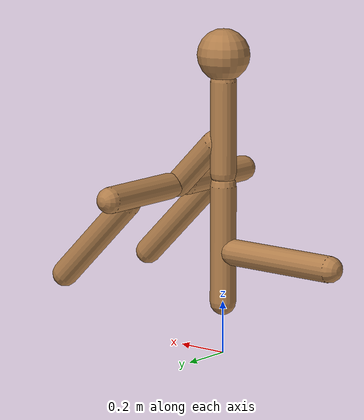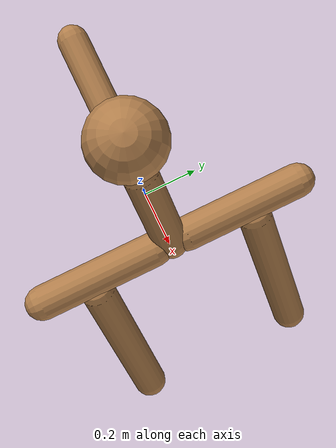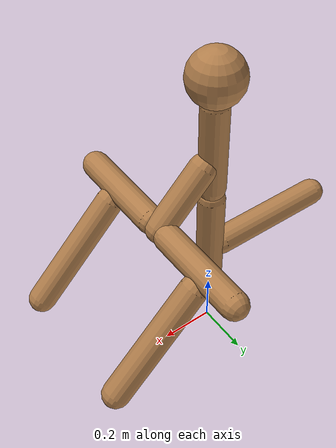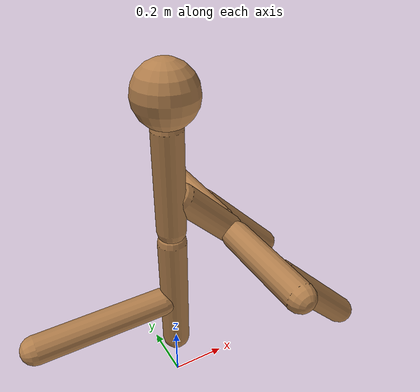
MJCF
<?xml version='1.0' encoding='UTF-8'?>
<!-- Universal Animal Template: unimal -->
<mujoco model="unimal">
  <compiler angle="degree"/>
  <size njmax="2000" nconmax="500"/>
  <option timestep=".005">
    <flag filterparent="disable"/>
  </option>
  <!-- Common defaults to make search space tractable -->
  <default>
    <!-- Define motor defaults -->
    <motor ctrlrange="-1 1" ctrllimited="true"/>
    <!-- Define joint defaults -->
    <default class="normal_joint">
      <joint type="hinge" damping="1" stiffness="1" armature="1" limited="true" range="-120 120" solimplimit="0 0.99 0.01"/>
    </default>
    <default class="walker_joint">
      <joint type="hinge" damping="0.2" stiffness="1" armature=".01" limited="true" range="-120 120" solimplimit="0 0.99 0.01"/>
    </default>
    <default class="stiff_joint">
      <joint type="hinge" damping="5" stiffness="10" armature=".01" limited="true" solimplimit="0 0.99 0.01"/>
    </default>
    <default class="free">
      <joint limited="false" damping="0" armature="0" stiffness="0"/>
    </default>
    <default class="growth_site">
      <site size="1e-6 1e-6 1e-6"/>
    </default>
    <default class="torso_growth_site">
      <site size="1e-6 1e-6 1e-6"/>
    </default>
    <default class="mirror_growth_site">
      <site size="1e-6 1e-6 1e-6"/>
    </default>
    <default class="btm_pos_site">
      <site size="1e-6 1e-6 1e-6"/>
    </default>
    <default class="box_face_site">
      <site size="1e-6 1e-6 1e-6"/>
    </default>
    <default class="imu_vel">
      <site type="box" size="0.05" rgba="1 0 0 0"/>
    </default>
    <default class="touch_site">
      <site group="3" rgba="0 0 1 .3"/>
    </default>
    <default class="food_site">
      <site material="food" size="0.15"/>
    </default>
    <!-- Define geom defaults -->
    <geom type="capsule" condim="3" friction="0.7 0.1 0.1" material="self"/>
  </default>
  <worldbody>
    <light diffuse="1 1 1" directional="true" exponent="1" pos="0 0 8" specular="0.1 0.1 0.1" dir="0 0 -1"/>
    <!-- Programatically generated xml goes here -->
    <body name="torso/0" pos="0 0 1.15">
      <joint name="root" type="free" class="free"/>
      <site name="root" class="imu_vel"/>
      <geom name="torso/0" type="sphere" size="0.1" condim="3" density="700"/>
      <camera name="side" pos="0 -7 2" xyaxes="1 0 0 0 1 2" mode="trackcom"/>
      <site name="torso/0" class="growth_site" pos="0 0 0"/>
      <site name="torso/btm_pos/0" class="btm_pos_site" pos="0 0 -0.1"/>
      <site name="torso/touch/0" class="touch_site" size="0.11"/>
      <site name="torso/horizontal_y/0" class="torso_growth_site" pos="-0.1 0 0"/>
      <body name="limb/0" pos="0.0 0.0 -0.1">
        <joint name="limbx/0" type="hinge" class="normal_joint" range="-90 0" pos="0.0 0.0 0.05" axis="1.0 0.0 0.0"/>
        <joint name="limby/0" type="hinge" class="normal_joint" range="-60 0" pos="0.0 0.0 0.05" axis="0.0 1.0 0.0"/>
        <geom name="limb/0" type="capsule" fromto="0.0 0.0 0.0 0.0 0.0 -0.35" size="0.05" density="800"/>
        <site name="limb/mid/0" class="growth_site" pos="0.0 0.0 -0.2"/>
        <site name="limb/btm/0" class="growth_site" pos="0.0 0.0 -0.35"/>
        <site name="limb/btm_pos/0" class="btm_pos_site" pos="0.0 0.0 -0.35"/>
        <site name="limb/touch/0" class="touch_site" size="0.060000000000000005" fromto="0.0 0.0 0.0 0.0 0.0 -0.35" type="capsule"/>
        <body name="limb/36" pos="0.0 0.0 -0.4">
          <joint name="limbx/36" type="hinge" class="normal_joint" range="-60 60" pos="0.0 0.0 0.05" axis="1.0 0.0 0.0"/>
          <joint name="limby/36" type="hinge" class="normal_joint" range="-30 60" pos="0.0 0.0 0.05" axis="0.0 1.0 0.0"/>
          <geom name="limb/36" type="capsule" fromto="0.0 0.0 0.0 0.0 0.0 -0.45" size="0.05" density="800"/>
          <site name="limb/mid/36" class="growth_site" pos="0.0 0.0 -0.25"/>
          <site name="limb/btm/36" class="growth_site" pos="0.0 0.0 -0.45"/>
          <site name="limb/btm_pos/36" class="btm_pos_site" pos="0.0 0.0 -0.45"/>
          <site name="limb/touch/36" class="touch_site" size="0.060000000000000005" fromto="0.0 0.0 0.0 0.0 0.0 -0.45" type="capsule"/>
          <body name="limb/43" pos="-0.05 0.0 -0.25">
            <joint name="limbx/43" type="hinge" class="normal_joint" range="-45 0" pos="0.05 0.0 0.0" axis="0.0 0.0 -1.0"/>
            <joint name="limby/43" type="hinge" class="normal_joint" range="-60 0" pos="0.05 0.0 0.0" axis="0.0 1.0 0.0"/>
            <geom name="limb/43" type="capsule" fromto="0.0 0.0 0.0 -0.45 0.0 0.0" size="0.05" density="800"/>
            <site name="limb/mid/43" class="growth_site" pos="-0.25 0.0 0.0"/>
            <site name="limb/btm/43" class="growth_site" pos="-0.45 0.0 0.0"/>
            <site name="limb/btm_pos/43" class="btm_pos_site" pos="-0.45 0.0 0.0"/>
            <site name="limb/touch/43" class="touch_site" size="0.060000000000000005" fromto="0.0 0.0 0.0 -0.45 0.0 0.0" type="capsule"/>
          </body>
        </body>
        <body name="limb/48" pos="0.04 0.0 -0.24000000000000002">
          <joint name="limbx/48" type="hinge" class="normal_joint" range="0 90" pos="-0.04 0.0 0.04" axis="0.7071 0.0 0.7071"/>
          <joint name="limby/48" type="hinge" class="normal_joint" range="-60 0" pos="-0.04 0.0 0.04" axis="-0.0 1.0 0.0"/>
          <geom name="limb/48" type="capsule" fromto="0.0 0.0 0.0 0.18 0.0 -0.18" size="0.05" density="800"/>
          <site name="limb/mid/48" class="growth_site" pos="0.11 0.0 -0.11"/>
          <site name="limb/btm/48" class="growth_site" pos="0.18 0.0 -0.18"/>
          <site name="limb/btm_pos/48" class="btm_pos_site" pos="0.21 0.0 -0.21"/>
          <site name="limb/touch/48" class="touch_site" size="0.060000000000000005" fromto="0.0 0.0 0.0 0.18 0.0 -0.18" type="capsule"/>
          <body name="limb/49" pos="0.18 0.05 -0.18">
            <joint name="limbx/49" type="hinge" class="normal_joint" range="-30 60" pos="0.0 -0.05 0.0" axis="1.0 0.0 0.0"/>
            <geom name="limb/49" type="capsule" fromto="0.0 0.0 0.0 0.0 0.35 0.0" size="0.05" density="800"/>
            <site name="limb/mid/49" class="mirror_growth_site" pos="0.0 0.2 0.0"/>
            <site name="limb/btm/49" class="mirror_growth_site" pos="0.0 0.35 0.0"/>
            <site name="limb/btm_pos/49" class="btm_pos_site" pos="0.0 0.4 0.0"/>
            <site name="limb/touch/49" class="touch_site" size="0.060000000000000005" fromto="0.0 0.0 0.0 0.0 0.35 0.0" type="capsule"/>
            <body name="limb/51" pos="0.04 0.2 -0.04">
              <joint name="limby/51" type="hinge" class="normal_joint" range="-30 30" pos="-0.04 0.0 0.04" axis="-0.0 1.0 0.0"/>
              <geom name="limb/51" type="capsule" fromto="0.0 0.0 0.0 0.32 0.0 -0.32" size="0.05" density="800"/>
              <site name="limb/mid/51" class="mirror_growth_site" pos="0.18 0.0 -0.18"/>
              <site name="limb/btm/51" class="mirror_growth_site" pos="0.32 0.0 -0.32"/>
              <site name="limb/btm_pos/51" class="btm_pos_site" pos="0.35 0.0 -0.35"/>
              <site name="limb/touch/51" class="touch_site" size="0.060000000000000005" fromto="0.0 0.0 0.0 0.32 0.0 -0.32" type="capsule"/>
            </body>
          </body>
          <body name="limb/50" pos="0.18 -0.05 -0.18">
            <joint name="limbx/50" type="hinge" class="normal_joint" range="-30 60" pos="0.0 0.05 0.0" axis="1.0 0.0 -0.0"/>
            <geom name="limb/50" type="capsule" fromto="0.0 0.0 0.0 0.0 -0.35 0.0" size="0.05" density="800"/>
            <site name="limb/mid/50" class="mirror_growth_site" pos="0.0 -0.2 0.0"/>
            <site name="limb/btm/50" class="mirror_growth_site" pos="0.0 -0.35 0.0"/>
            <site name="limb/btm_pos/50" class="btm_pos_site" pos="0.0 -0.4 0.0"/>
            <site name="limb/touch/50" class="touch_site" size="0.060000000000000005" fromto="0.0 0.0 0.0 0.0 -0.35 0.0" type="capsule"/>
            <body name="limb/52" pos="0.04 -0.2 -0.04">
              <joint name="limby/52" type="hinge" class="normal_joint" range="-30 30" pos="-0.04 0.0 0.04" axis="-0.0 1.0 0.0"/>
              <geom name="limb/52" type="capsule" fromto="0.0 0.0 0.0 0.32 0.0 -0.32" size="0.05" density="800"/>
              <site name="limb/mid/52" class="mirror_growth_site" pos="0.18 0.0 -0.18"/>
              <site name="limb/btm/52" class="mirror_growth_site" pos="0.32 0.0 -0.32"/>
              <site name="limb/btm_pos/52" class="btm_pos_site" pos="0.35 0.0 -0.35"/>
              <site name="limb/touch/52" class="touch_site" size="0.060000000000000005" fromto="0.0 0.0 0.0 0.32 0.0 -0.32" type="capsule"/>
            </body>
          </body>
        </body>
      </body>
    </body>
  </worldbody>
  <actuator>
    <motor joint="limbx/0" gear="250" name="limbx/0"/>
    <motor joint="limby/0" gear="150" name="limby/0"/>
    <motor joint="limbx/36" gear="150" name="limbx/36"/>
    <motor joint="limby/36" gear="250" name="limby/36"/>
    <motor joint="limbx/43" gear="250" name="limbx/43"/>
    <motor joint="limby/43" gear="150" name="limby/43"/>
    <motor joint="limbx/48" gear="250" name="limbx/48"/>
    <motor joint="limby/48" gear="150" name="limby/48"/>
    <motor joint="limbx/49" gear="200" name="limbx/49"/>
    <motor joint="limby/51" gear="150" name="limby/51"/>
    <motor joint="limbx/50" gear="200" name="limbx/50"/>
    <motor joint="limby/52" gear="150" name="limby/52"/>
  </actuator>
  <sensor>
    <accelerometer name="torso_accel" site="root"/>
    <gyro name="torso_gyro" site="root"/>
    <velocimeter name="torso_vel" site="root"/>
    <subtreeangmom name="unimal_am" body="torso/0"/>
    <touch name="torso/0" site="torso/touch/0"/>
    <touch name="limb/0" site="limb/touch/0"/>
    <touch name="limb/36" site="limb/touch/36"/>
    <touch name="limb/43" site="limb/touch/43"/>
    <touch name="limb/48" site="limb/touch/48"/>
    <touch name="limb/49" site="limb/touch/49"/>
    <touch name="limb/51" site="limb/touch/51"/>
    <touch name="limb/50" site="limb/touch/50"/>
    <touch name="limb/52" site="limb/touch/52"/>
  </sensor>
  <!-- Add hfield assets -->
  <asset/>
  <!-- List of contacts to exclude -->
  <contact>
    <exclude name="limb/49:limb/50" body1="limb/49" body2="limb/50"/>
  </contact>
  <!-- Define material, texture etc -->
  <asset>
    <material name="grid" texture="grid" texrepeat="1 1" texuniform="true" reflectance="0.1"/>
    <material name="hfield" texture="hfield" texrepeat="1 1" texuniform="true" reflectance="0.1"/>
    <material name="wall" texture="wall" texrepeat="1 1" texuniform="true" reflectance=".5"/>
    <material name="platform" texture="platform" texrepeat="1 1" texuniform="true" reflectance=".5"/>
    <material name="boundary" texture="boundary" texrepeat="1 1" texuniform="true" reflectance=".5"/>
    <material name="jump" texture="jump" texrepeat="1 1" texuniform="true" reflectance=".5"/>
    <material name="goal" rgba="1 0 0 1"/>
    <material name="food" rgba="0 0 1 1" emission="1"/>
    <material name="init_position" rgba="0 1 0 0.7"/>
    <material name="self" rgba=".7 .5 .3 1"/>
    <material name="self_invisible" rgba=".7 .5 .3 0"/>
    <material name="self_default" rgba=".7 .5 .3 1"/>
    <material name="self_highlight" rgba="0 .5 .3 1"/>
    <material name="effector" rgba=".7 .4 .2 1"/>
    <material name="effector_default" rgba=".7 .4 .2 1"/>
    <material name="effector_highlight" rgba="0 .5 .3 1"/>
    <material name="decoration" rgba=".3 .5 .7 1"/>
    <material name="eye" rgba="0 .2 1 1"/>
    <material name="target" rgba=".6 .3 .3 1"/>
    <material name="target_default" rgba=".6 .3 .3 1"/>
    <material name="target_highlight" rgba=".6 .3 .3 .4"/>
    <material name="site" rgba=".5 .5 .5 .3"/>
    <material name="ball" texture="ball"/>
  </asset>
  <asset>
    <texture name="grid" type="2d" builtin="checker" rgb1="0.4 0.4 0.4" rgb2="0.4 0.4 0.4" width="300" height="300" mark="edge" markrgb="0.2 0.2 0.2"/>
    <texture name="hfield" type="2d" builtin="checker" rgb1="0.4 0.4 0.4" rgb2="0.4 0.4 0.4" width="300" height="300" mark="edge" markrgb="0.2 0.2 0.2"/>
    <texture name="wall" type="2d" builtin="flat" rgb1="0.9 0.7 0" rgb2="0.9 0.7 0" width="300" height="300"/>
    <texture name="platform" type="2d" builtin="flat" rgb1="0.3 0 0.8" rgb2="0.3 0 0.8" width="300" height="300"/>
    <texture name="boundary" type="2d" builtin="flat" rgb1="0.3 0.3 0.3" rgb2="0.3 0.3 0.3" width="300" height="300"/>
    <texture name="jump" type="2d" builtin="flat" rgb1="0.3 0.3 0.3" rgb2="0.3 0.3 0.3" width="300" height="300"/>
    <texture name="skybox" type="skybox" builtin="gradient" rgb1="1 1 1" rgb2="0.6 0.6 0.6" width="800" height="800"/>
    <texture name="ball" builtin="checker" mark="cross" width="151" height="151" rgb1="0.1 0.1 0.1" rgb2="0.9 0.9 0.9" markrgb="1 1 1"/>
  </asset>
  <visual>
    <headlight ambient="0.6 0.6 0.6" diffuse="0.3 0.3 0.3" specular="0 0 0"/>
    <map znear=".01" shadowclip="0.5"/>
    <quality shadowsize="16384"/>
  </visual>
</mujoco>
